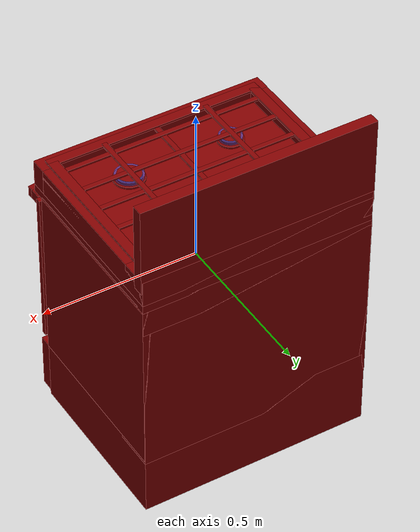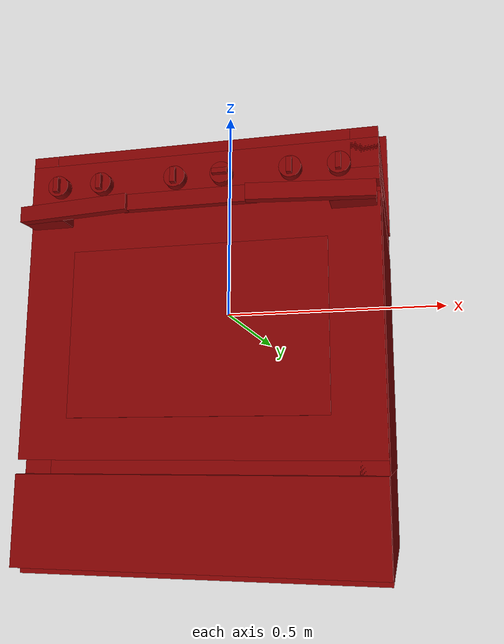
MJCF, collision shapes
<?xml version='1.0' encoding='UTF-8'?>
<mujoco model="model">
  <compiler angle="radian"/>
  <asset>
    <mesh file="visuals/knob_front_left.obj" name="knob_front_left_vis"/>
    <mesh file="visuals/knob_front_right.obj" name="knob_front_right_vis"/>
    <mesh file="visuals/knob_rear_left.obj" name="knob_rear_left_vis"/>
    <mesh file="visuals/knob_rear_right.obj" name="knob_rear_right_vis"/>
    <mesh file="visuals/Body001.obj" name="Body001_vis"/>
    <mesh file="visuals/Door001.obj" name="Door001_vis"/>
    <mesh file="visuals/Door001_Clear.obj" name="Door001_Clear_vis"/>
    <mesh file="visuals/Knob001.obj" name="Knob001_vis"/>
    <mesh file="visuals/Knob002.obj" name="Knob002_vis"/>
    <mesh file="visuals/Shelf001.obj" name="Shelf001_vis"/>
    <texture file="visuals/T_BC001.png" name="Body001_material" type="2d"/>
    <material name="Body001_material" rgba="1 1 1 1.0" texture="Body001_material" shininess="0.1" specular="1"/>
    <texture file="visuals/T_BC001.png" name="knob_front_left_material" type="2d"/>
    <material name="knob_front_left_material" rgba="1 1 1 1.0" texture="knob_front_left_material" shininess="0.1" specular="2"/>
    <texture file="visuals/T_BC001.png" name="knob_front_right_material" type="2d"/>
    <material name="knob_front_right_material" rgba="1 1 1 1.0" texture="knob_front_right_material" shininess="0.1" specular="2"/>
    <texture file="visuals/T_BC001.png" name="knob_rear_left_material" type="2d"/>
    <material name="knob_rear_left_material" rgba="1 1 1 1.0" texture="knob_rear_left_material" shininess="0.1" specular="2"/>
    <texture file="visuals/T_BC001.png" name="knob_rear_right_material" type="2d"/>
    <material name="knob_rear_right_material" rgba="1 1 1 1.0" texture="knob_rear_right_material" shininess="0.1" specular="2"/>
    <texture file="visuals/T_BC001.png" name="Door001_material" type="2d"/>
    <material name="Door001_material" rgba="1 1 1 1.0" texture="Door001_material" shininess="0.1" specular="1"/>
    <texture file="visuals/T_BC001.png" name="Door001_Clear_material" type="2d"/>
    <material name="Door001_Clear_material" rgba="1 1 1 0.5" texture="Door001_Clear_material" shininess="0.1" specular="2"/>
    <texture file="visuals/T_BC001.png" name="Knob001_material" type="2d"/>
    <material name="Knob001_material" rgba="1 1 1 1.0" texture="Knob001_material" shininess="0.1" specular="2"/>
    <texture file="visuals/T_BC001.png" name="Knob002_material" type="2d"/>
    <material name="Knob002_material" rgba="1 1 1 1.0" texture="Knob002_material" shininess="0.1" specular="1"/>
    <texture file="visuals/T_BC001.png" name="Shelf001_material" type="2d"/>
    <material name="Shelf001_material" rgba="1 1 1 1.0" texture="Shelf001_material" shininess="0.1" specular="1"/>
  </asset>
  <default>
    <default class="visual">
      <geom conaffinity="0" contype="0" group="1" type="mesh"/>
    </default>
    <default class="collision">
      <geom group="0" rgba="0.5 0 0 0.5"/>
    </default>
    <default class="spawn">
      <geom group="0" rgba="1 1 1 0.5" contype="0" conaffinity="0"/>
      <site group="0" rgba="1 1 1 0.5"/>
    </default>
    <default class="region">
      <geom group="1" conaffinity="0" contype="0" rgba="0 1 0 0"/>
    </default>
  </default>
  <worldbody>
    <body>
      <body name="object">
        <site type="cylinder" rgba="0.3 0.4 1 0.5" size="0.03611009567975998 0.005172248464077711" pos="-0.16648337244987488 -0.08395028114318848 0.3046778738498688" name="burner_on_front_left"/>
        <site type="cylinder" rgba="0.3 0.4 1 0.5" size="0.043951887637376785 0.005172248464077711" pos="0.16671663522720337 -0.0839512050151825 0.3046778738498688" name="burner_on_front_right"/>
        <site type="cylinder" rgba="0.3 0.4 1 0.5" size="0.03423852100968361 0.005172248464077711" pos="-0.16648519039154053 0.1084383875131607 0.3046778738498688" name="burner_on_rear_left"/>
        <site type="cylinder" rgba="0.3 0.4 1 0.5" size="0.04102875292301178 0.005172248464077711" pos="0.16671663522720337 0.10843902826309204 0.3046778738498688" name="burner_on_rear_right"/>
        <geom mesh="Body001_vis" type="mesh" solimp="0.998 0.998 0.001" solref="0.001 1" density="100" friction="0.95 0.3 0.1" class="visual" material="Body001_material"/>
        <geom class="collision" type="box" pos="0.34396031498908997 0.0355360172688961 0.2718707025051117" size="0.027703871950507164 0.30218106508255005 0.041509922593832016" quat="1.0 0.0 0.0 0.0"/>
        <geom class="collision" type="box" pos="6.924683049192026e-08 -0.24004031717777252 0.2720169723033905" size="0.3716641366481781 0.02598430961370468 0.041656188666820526" quat="1.0 0.0 0.0 0.0"/>
        <geom class="collision" type="box" pos="-0.3437274098396301 0.0355360172688961 0.2718707025051117" size="0.027703871950507164 0.30218106508255005 0.041509922593832016" quat="1.0 0.0 0.0 0.0"/>
        <geom class="collision" type="box" pos="6.924683049192026e-08 0.29171818494796753 0.2720169723033905" size="0.3716641366481781 0.04599890112876892 0.041656188666820526" quat="1.0 0.0 0.0 0.0"/>
        <geom class="collision" type="box" pos="0.0003474582335911691 -0.22944338619709015 0.31681928038597107" size="0.34643083810806274 0.01538738701492548 0.0034386413171887398" quat="1.0 0.0 0.0 0.0"/>
        <geom class="collision" type="box" pos="0.0003474582335911691 0.25593990087509155 0.31681928038597107" size="0.34643083810806274 0.01538738701492548 0.0034386413171887398" quat="1.0 0.0 0.0 0.0"/>
        <geom class="collision" type="box" pos="0.3314535915851593 0.022474953904747963 0.31681928038597107" size="0.015387431718409061 0.2481757253408432 0.0034386413171887398" quat="1.0 0.0 0.0 0.0"/>
        <geom class="collision" type="box" pos="-0.331693559885025 0.022474953904747963 0.31681928038597107" size="0.015387431718409061 0.2481757253408432 0.0034386413171887398" quat="1.0 0.0 0.0 0.0"/>
        <geom class="collision" type="box" pos="-0.000187981640920043 0.3183165192604065 0.4163304269313812" size="0.3753405511379242 0.017788369208574295 0.14292873442173004" quat="1.0 0.0 0.0 0.0"/>
        <geom class="collision" type="box" pos="-0.34461894631385803 0.0556202195584774 -0.08037658780813217" size="0.0282307006418705 0.28209689259529114 0.28328806161880493" quat="1.0 0.0 0.0 0.0"/>
        <geom class="collision" type="box" pos="0.3448219299316406 0.0556202195584774 -0.08037658780813217" size="0.028214074671268463 0.28209689259529114 0.28328806161880493" quat="1.0 0.0 0.0 0.0"/>
        <geom class="collision" type="box" pos="5.624315235763788e-08 0.0556202158331871 -0.4323696494102478" size="0.3716641664505005 0.28209689259529114 0.12749764323234558" quat="1.0 0.0 0.0 0.0"/>
        <geom class="collision" type="box" pos="5.624315235763788e-08 -0.24676084518432617 -0.45345813035964966" size="0.3716641664505005 0.020284172147512436 0.09009308367967606" quat="1.0 0.0 0.0 0.0"/>
        <geom class="collision" type="box" pos="5.624315235763788e-08 0.0556202158331871 0.16500025987625122" size="0.3716641664505005 0.28209689259529114 0.04473291337490082" quat="1.0 0.0 0.0 0.0"/>
        <geom class="collision" type="box" pos="5.624315235763788e-08 0.2721762955188751 -0.08635221421718597" size="0.3716641664505005 0.06554075330495834 0.28845295310020447" quat="1.0 0.0 0.0 0.0"/>
        <geom class="collision" type="box" pos="0.0 0.020841868594288826 0.3120667636394501" size="0.007792325224727392 0.24673447012901306 0.0031466009095311165" quat="1.0 0.0 0.0 0.0"/>
        <geom class="collision" type="box" pos="0.16670244932174683 0.021124526858329773 0.3178941011428833" size="0.007792325224727392 0.24673447012901306 0.0031466009095311165" quat="1.0 0.0 0.0 0.0"/>
        <geom class="collision" type="box" pos="-0.16748251020908356 0.021124526858329773 0.3178941011428833" size="0.007792325224727392 0.24673447012901306 0.0031466009095311165" quat="1.0 0.0 0.0 0.0"/>
        <geom class="collision" type="box" pos="0.00461535295471549 0.011810929514467716 0.3157567083835602" size="0.33552229404449463 0.007792375516146421 0.0031466009095311165" quat="1.0 0.0 0.0 0.0"/>
        <geom class="collision" type="box" pos="0.00461535295471549 -0.08336476981639862 0.3157567083835602" size="0.33552229404449463 0.007792375516146421 0.0031466009095311165" quat="1.0 0.0 0.0 0.0"/>
        <geom class="collision" type="box" pos="0.00461535295471549 -0.1800871342420578 0.3157567083835602" size="0.33552229404449463 0.007792375516146421 0.0031466009095311165" quat="1.0 0.0 0.0 0.0"/>
        <geom class="collision" type="box" pos="0.00461535295471549 0.10742567479610443 0.3157567083835602" size="0.33552229404449463 0.007792375516146421 0.0031466009095311165" quat="1.0 0.0 0.0 0.0"/>
        <geom class="collision" type="box" pos="0.00461535295471549 0.2015698254108429 0.3157567083835602" size="0.33552229404449463 0.007792375516146421 0.0031466009095311165" quat="1.0 0.0 0.0 0.0"/>
        <geom class="collision" type="cylinder" pos="0.16652755439281464 -0.08388938754796982 0.2783210277557373" size="0.036834485828876495 0.03185638412833214" quat="1.0 0.0 0.0 0.0"/>
        <geom class="collision" type="cylinder" pos="-0.16625942289829254 -0.08388938754796982 0.2783210277557373" size="0.029217425733804703 0.03185638412833214" quat="1.0 0.0 0.0 0.0"/>
        <geom class="collision" type="cylinder" pos="-0.16625942289829254 0.10857708752155304 0.2783210277557373" size="0.028576960787177086 0.03185638412833214" quat="1.0 0.0 0.0 0.0"/>
        <geom class="collision" type="cylinder" pos="0.1667882204055786 0.10857708752155304 0.2783210277557373" size="0.03343462944030762 0.03185638412833214" quat="1.0 0.0 0.0 0.0"/>
        <geom class="collision" type="cylinder" pos="0.1668260246515274 -0.08438156545162201 0.2658956050872803" size="0.0481528714299202 0.03185638412833214" quat="1.0 0.0 0.0 0.0"/>
        <geom class="collision" type="cylinder" pos="-0.16587761044502258 -0.0833655521273613 0.2658956050872803" size="0.04058735445141792 0.03185638412833214" quat="1.0 0.0 0.0 0.0"/>
        <geom class="collision" type="cylinder" pos="-0.1684684008359909 0.10808490961790085 0.2658956050872803" size="0.04064604267477989 0.03185638412833214" quat="1.0 0.0 0.0 0.0"/>
        <geom class="collision" type="cylinder" pos="0.16733837127685547 0.10808490961790085 0.2658956050872803" size="0.04848144203424454 0.03185638412833214" quat="1.0 0.0 0.0 0.0"/>
        <geom class="collision" type="box" pos="0.3241608142852783 0.0020631689112633467 -0.09308252483606339" size="0.027589945122599602 0.17868469655513763 0.0013510260032489896" quat="1.0 0.0 0.0 0.0"/>
        <geom class="collision" type="box" pos="0.33909159898757935 0.0020631689112633467 -0.0829729288816452" size="0.027589945122599602 0.17868469655513763 0.011460619047284126" quat="1.0 0.0 0.0 0.0"/>
        <geom class="collision" type="box" pos="0.3266005516052246 0.0020631689112633467 -0.0743316262960434" size="0.027589945122599602 0.17868469655513763 0.003063765587285161" quat="1.0 0.0 0.0 0.0"/>
        <geom class="collision" type="box" pos="-0.3259783387184143 0.0020631689112633467 -0.0931297242641449" size="0.027589945122599602 0.17868469655513763 0.0013038265751674771" quat="1.0 0.0 0.0 0.0"/>
        <geom class="collision" type="box" pos="-0.3385297358036041 0.0020631689112633467 -0.0829729288816452" size="0.027589945122599602 0.17868469655513763 0.011460619047284126" quat="1.0 0.0 0.0 0.0"/>
        <geom class="collision" type="box" pos="-0.3271794021129608 0.0020631689112633467 -0.0743316262960434" size="0.027589945122599602 0.17868469655513763 0.003063765587285161" quat="1.0 0.0 0.0 0.0"/>
        <geom class="collision" type="box" pos="0.00011644249752862379 0.0355360172688961 0.24712295830249786" size="0.37154775857925415 0.30218106508255005 0.04382285848259926" quat="1.0 0.0 0.0 0.0"/>
        <body name="knob_front_left">
          <joint axis="0.0 -1.0 0.0" pos="-0.3026251792907715 -0.28208956122398376 0.2365647554397583" limited="true" name="knob_front_left_joint" range="0.0 3.141592653589793" type="hinge" damping="0.05" armature="0.001"/>
          <geom mesh="knob_front_left_vis" type="mesh" solimp="0.998 0.998 0.001" solref="0.001 1" density="100" friction="0.95 0.3 0.1" class="visual" material="knob_front_left_material"/>
          <geom class="collision" type="cylinder" pos="-0.3024694323539734 -0.27740800380706787 0.23673368990421295" size="0.022574562579393387 0.00932288821786642" quat="0.7071068286895752 0.7071067690849304 0.0 0.0"/>
          <geom class="collision" type="box" pos="-0.30265775322914124 -0.29158005118370056 0.23677793145179749" size="0.005231413524597883 0.006307623349130154 0.015703316777944565" quat="1.0 0.0 0.0 0.0" name="knob_front_left_main"/>
        </body>
        <body name="knob_front_right">
          <joint axis="0.0 -1.0 0.0" pos="0.2943209409713745 -0.28208956122398376 0.2365647554397583" limited="true" name="knob_front_right_joint" range="0.0 3.141592653589793" type="hinge" damping="0.05" armature="0.001"/>
          <geom mesh="knob_front_right_vis" type="mesh" solimp="0.998 0.998 0.001" solref="0.001 1" density="100" friction="0.95 0.3 0.1" class="visual" material="knob_front_right_material"/>
          <geom class="collision" type="cylinder" pos="0.2946217656135559 -0.2774079740047455 0.23673368990421295" size="0.022574562579393387 0.00932288821786642" quat="0.7071068286895752 0.7071067690849304 0.0 0.0"/>
          <geom class="collision" type="box" pos="0.2944334149360657 -0.29158005118370056 0.23677793145179749" size="0.005231413524597883 0.006307623349130154 0.015703316777944565" quat="1.0 0.0 0.0 0.0" name="knob_front_right_main"/>
        </body>
        <body name="knob_rear_left">
          <joint axis="0.0 -1.0 0.0" pos="-0.206198588013649 -0.28208956122398376 0.2365647554397583" limited="true" name="knob_rear_left_joint" range="0.0 3.141592653589793" type="hinge" damping="0.05" armature="0.001"/>
          <geom mesh="knob_rear_left_vis" type="mesh" solimp="0.998 0.998 0.001" solref="0.001 1" density="100" friction="0.95 0.3 0.1" class="visual" material="knob_rear_left_material"/>
          <geom class="collision" type="cylinder" pos="-0.20595243573188782 -0.2774079740047455 0.23673368990421295" size="0.022574562579393387 0.00932288821786642" quat="0.7071068286895752 0.7071067690849304 0.0 0.0"/>
          <geom class="collision" type="box" pos="-0.20614075660705566 -0.29158005118370056 0.23677793145179749" size="0.005231413524597883 0.006307623349130154 0.015703316777944565" quat="1.0 0.0 0.0 0.0" name="knob_rear_left_main"/>
        </body>
        <body name="knob_rear_right">
          <joint axis="0.0 -1.0 0.0" pos="0.19744689762592316 -0.28208956122398376 0.2365647554397583" limited="true" name="knob_rear_right_joint" range="0.0 3.141592653589793" type="hinge" damping="0.05" armature="0.001"/>
          <geom mesh="knob_rear_right_vis" type="mesh" solimp="0.998 0.998 0.001" solref="0.001 1" density="100" friction="0.95 0.3 0.1" class="visual" material="knob_rear_right_material"/>
          <geom class="collision" type="cylinder" pos="0.19776120781898499 -0.2774079740047455 0.23673368990421295" size="0.022574562579393387 0.00932288821786642" quat="0.7071068286895752 0.7071067690849304 0.0 0.0"/>
          <geom class="collision" type="box" pos="0.19757288694381714 -0.29158005118370056 0.23677793145179749" size="0.005231413524597883 0.006307623349130154 0.015703316777944565" quat="1.0 0.0 0.0 0.0" name="knob_rear_right_main"/>
        </body>
        <body name="Door001">
          <joint axis="1.0 0.0 0.0" pos="3.5188986657885835e-05 -0.2670935094356537 -0.35669413208961487" limited="true" name="Door001_joint" range="0.0 1.5707963267948966" type="hinge" damping="1" frictionloss="1" armature=".01" stiffness="0.05"/>
          <geom mesh="Door001_vis" type="mesh" solimp="0.998 0.998 0.001" solref="0.001 1" density="100" friction="0.95 0.3 0.1" class="visual" material="Door001_material"/>
          <geom class="collision" type="box" pos="0.32111576199531555 -0.28261643648147583 0.16753073036670685" size="0.04439326003193855 0.02187485806643963 0.0162134300917387" quat="1.0 0.0 0.0 0.0"/>
          <geom class="collision" type="box" pos="-0.32054615020751953 -0.28261643648147583 0.16748468577861786" size="0.04469052702188492 0.021874871104955673 0.016167400404810905" quat="1.0 0.0 0.0 0.0"/>
          <geom class="collision" type="box" pos="0.00407536793500185 -0.32990553975105286 0.1678217351436615" size="0.1361575722694397 0.007931319065392017 0.016504472121596336" quat="1.0 0.0 0.0 0.0"/>
          <geom class="collision" type="box" pos="8.568167686462402e-08 -0.25195369124412537 -0.07753480970859528" size="0.37166374921798706 0.008730140514671803 0.25787872076034546" quat="1.0 0.0 0.0 0.0"/>
          <geom class="collision" type="box" pos="0.2431437075138092 -0.3212003707885742 0.1678217351436615" size="0.12385857105255127 0.009444495663046837 0.01650451123714447" quat="0.9981120228767395 0.0 0.0 0.06142010539770126"/>
          <geom class="collision" type="box" pos="-0.2438206672668457 -0.3212003707885742 0.1678217351436615" size="0.12385857105255127 0.009444495663046837 0.01650451123714447" quat="0.9981120228767395 0.0 -0.0 -0.06142012029886246"/>
          <body name="Door001_Clear">
            <geom mesh="Door001_Clear_vis" type="mesh" solimp="0.998 0.998 0.001" solref="0.001 1" density="100" friction="0.95 0.3 0.1" class="visual" material="Door001_Clear_material"/>
            <geom class="collision" type="box" pos="0.0010643453570082784 -0.26509907841682434 -0.07913118600845337" size="0.2673667371273041 0.0017736089648678899 0.17327041923999786" quat="1.0 0.0 0.0 0.0"/>
          </body>
        </body>
        <body name="Knob001">
          <joint axis="0.0 1.0 0.0" pos="-0.043234262615442276 -0.28208956122398376 0.2365647554397583" limited="true" name="Knob001_joint" range="0.0 4.014257279586958" type="hinge" damping="0.05" armature="0.001"/>
          <geom mesh="Knob001_vis" type="mesh" solimp="0.998 0.998 0.001" solref="0.001 1" density="100" friction="0.95 0.3 0.1" class="visual" material="Knob001_material"/>
          <geom class="collision" type="cylinder" pos="-0.04319572448730469 -0.2774079740047455 0.23673368990421295" size="0.022574562579393387 0.00932288821786642" quat="0.7071068286895752 0.7071067690849304 0.0 0.0"/>
          <geom class="collision" type="box" pos="-0.043384045362472534 -0.29158005118370056 0.23677793145179749" size="0.005231413524597883 0.006307623349130154 0.015703316777944565" quat="1.0 0.0 0.0 0.0"/>
        </body>
        <body name="Knob002">
          <joint axis="0.0 1.0 0.0" pos="0.05543176457285881 -0.28208956122398376 0.2368582934141159" limited="true" name="Knob002_joint" range="0.0 3.6651914291880923" type="hinge" damping="0.05" armature="0.001"/>
          <geom mesh="Knob002_vis" type="mesh" solimp="0.998 0.998 0.001" solref="0.001 1" density="100" friction="0.95 0.3 0.1" class="visual" material="Knob002_material"/>
          <geom class="collision" type="cylinder" pos="0.055857740342617035 -0.2774079740047455 0.23673368990421295" size="0.022574562579393387 0.00932288821786642" quat="0.7071068286895752 0.7071067690849304 0.0 0.0"/>
          <geom class="collision" type="box" pos="0.055412549525499344 -0.29158005118370056 0.23677793145179749" size="0.015703316777944565 0.006307623349130154 0.005231414455920458" quat="1.0 0.0 0.0 0.0"/>
        </body>
        <body name="Shelf001">
          <joint axis="0.0 -1.0 0.0" pos="-0.0013591073220595717 0.0018712973687797785 -0.08152860403060913" limited="true" name="Shelf001_joint" range="0.0 0.25" type="slide" damping="1" frictionloss="1" armature=".01" stiffness="0.05"/>
          <geom mesh="Shelf001_vis" type="mesh" solimp="0.998 0.998 0.001" solref="0.001 1" density="100" friction="0.95 0.3 0.1" class="visual" material="Shelf001_material"/>
          <geom class="collision" type="box" pos="0.0013725876342505217 0.002390923909842968 -0.0793023556470871" size="0.2908157706260681 0.19227856397628784 0.0032185327727347612" quat="1.0 0.0 0.0 0.0"/>
          <geom class="collision" type="box" pos="0.2982712984085083 0.002390923909842968 -0.0821845680475235" size="0.012118300423026085 0.19227856397628784 0.0032185327727347612" quat="0.9565491080284119 0.0 0.2915712893009186 0.0"/>
          <geom class="collision" type="box" pos="-0.2965599298477173 0.002390923909842968 -0.0821845680475235" size="0.012118300423026085 0.19227856397628784 0.0032185327727347612" quat="0.9565491080284119 0.0 -0.2915712893009186 0.0"/>
        </body>
        <site name="burner_front_left_place_site" type="cylinder" rgba="0.3 0.4 1 0" size="0.03611009567975998 0.005172248464077711" pos="-0.16648337244987488 -0.08395028114318848 0.3046778738498688"/>
        <site name="burner_front_right_place_site" type="cylinder" rgba="0.3 0.4 1 0" size="0.043951887637376785 0.005172248464077711" pos="0.16671663522720337 -0.0839512050151825 0.3046778738498688"/>
        <site name="burner_rear_left_place_site" type="cylinder" rgba="0.3 0.4 1 0" size="0.03423852100968361 0.005172248464077711" pos="-0.16648519039154053 0.1084383875131607 0.3046778738498688"/>
        <site name="burner_rear_right_place_site" type="cylinder" rgba="0.3 0.4 1 0" size="0.04102875292301178 0.005172248464077711" pos="0.16671663522720337 0.10843902826309204 0.3046778738498688"/>
        <geom class="region" name="reg_main" type="box" pos="0.0 0.035929128527641296 -0.13458465039730072" size="0.37632453441619873 0.3030216097831726 0.4252825975418091"/>
        <geom class="region" name="reg_int" type="box" pos="0.000743865966796875 -0.009656988084316254 -0.09292522072792053" size="0.3141641914844513 0.21286875754594803 0.2112146019935608"/>
      </body>
    </body>
  </worldbody>
  <actuator>
    <motor name="knob_front_left_joint_actuator" joint="knob_front_left_joint" gear="10"/>
    <motor name="knob_front_right_joint_actuator" joint="knob_front_right_joint" gear="10"/>
    <motor name="knob_rear_left_joint_actuator" joint="knob_rear_left_joint" gear="10"/>
    <motor name="knob_rear_right_joint_actuator" joint="knob_rear_right_joint" gear="10"/>
    <motor name="Door001_joint_actuator" joint="Door001_joint" gear="50"/>
    <motor name="Knob001_joint_actuator" joint="Knob001_joint" gear="50"/>
    <motor name="Knob002_joint_actuator" joint="Knob002_joint" gear="50"/>
    <motor name="Shelf001_joint_actuator" joint="Shelf001_joint" gear="50"/>
  </actuator>
</mujoco>
